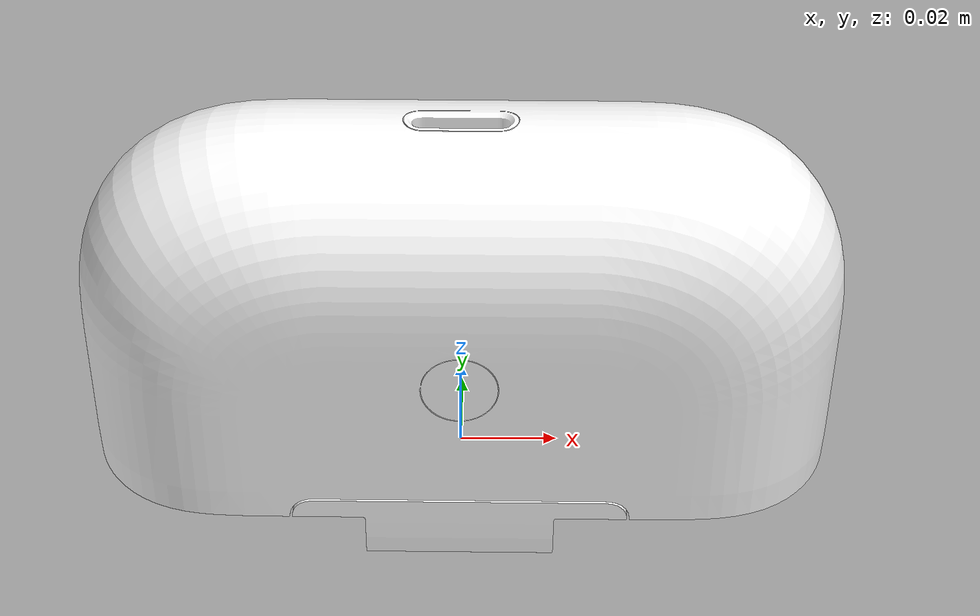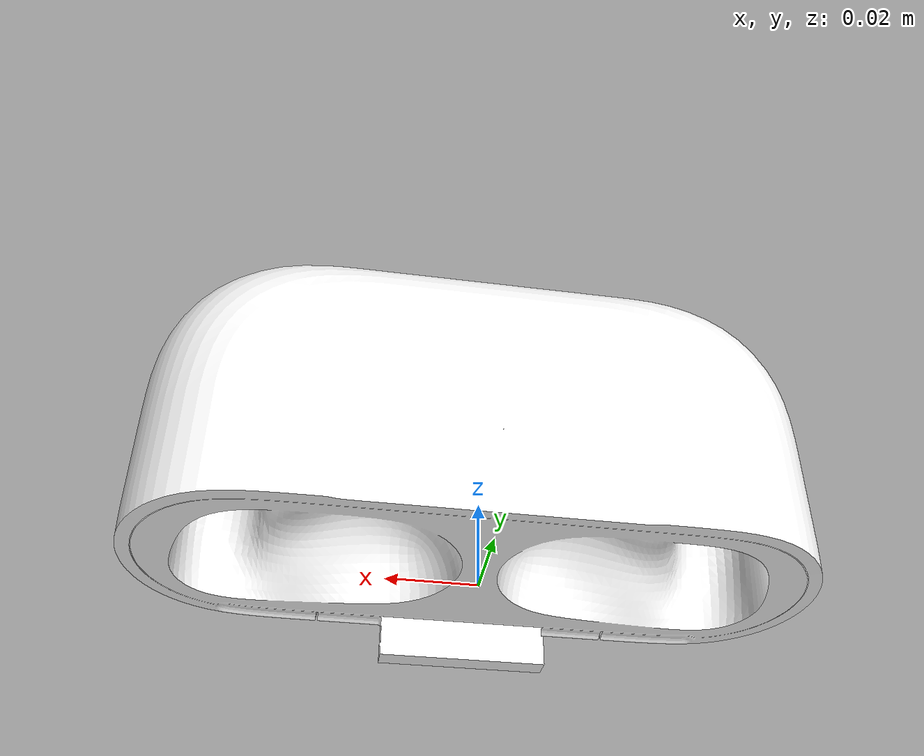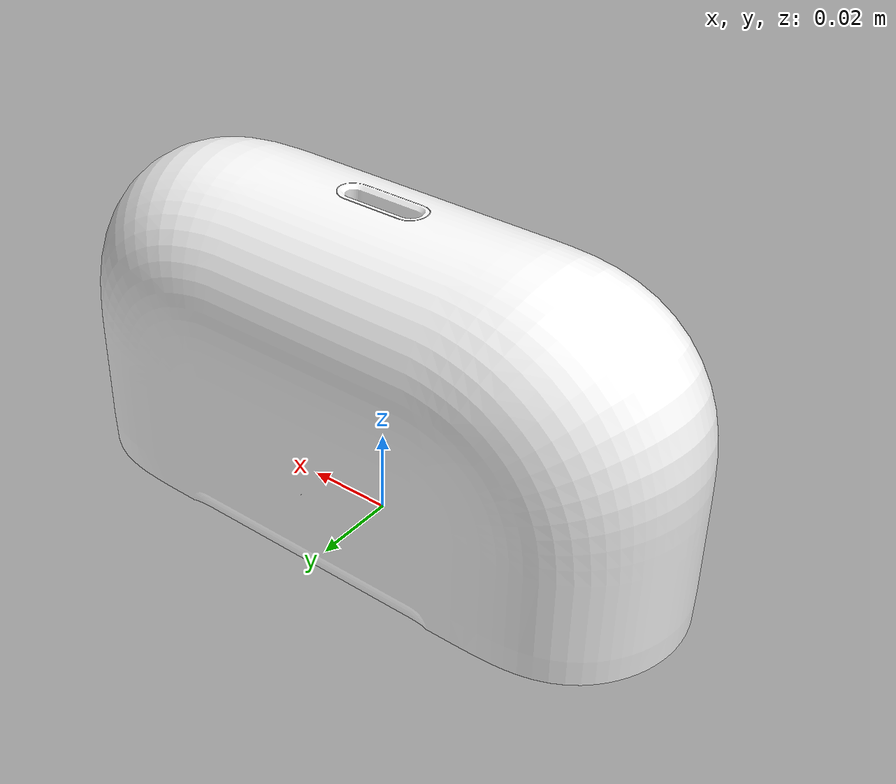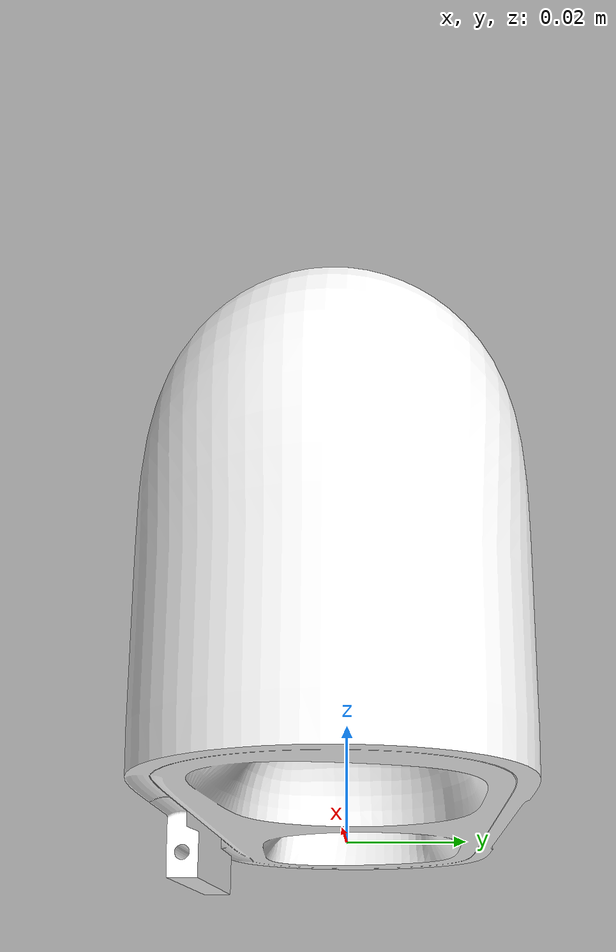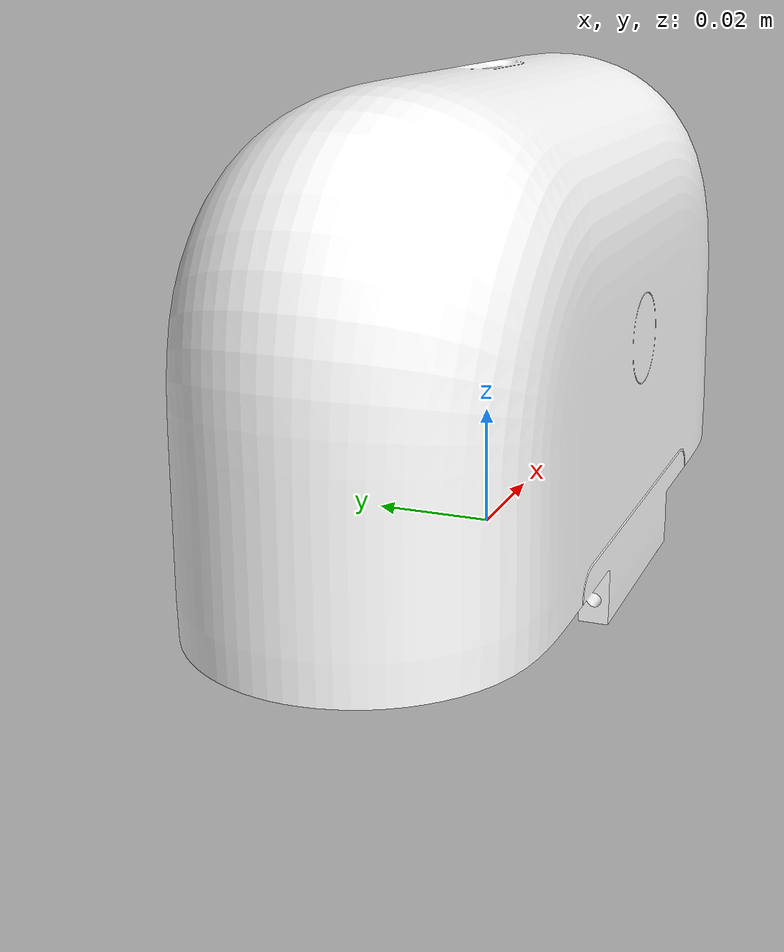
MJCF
<mujoco model="bottom_case_resized_proper_1">
  <default>
    <default class="visual">
      <geom group="2" type="mesh" contype="0" conaffinity="0"/>
    </default>
    <default class="collision">
      <geom group="3" type="mesh"/>
    </default>
  </default>
  <asset>
    <material name="material_0" specular="0.4000000000000001" shininess="0.001" rgba="1.00000000 1.00000000 1.00000000 1.0"/>
    <mesh file="bottom_case_resized_proper_1.obj"/>
    <mesh file="bottom_case_resized_proper_1_collision_0.obj"/>
    <mesh file="bottom_case_resized_proper_1_collision_1.obj"/>
    <mesh file="bottom_case_resized_proper_1_collision_2.obj"/>
    <mesh file="bottom_case_resized_proper_1_collision_3.obj"/>
    <mesh file="bottom_case_resized_proper_1_collision_4.obj"/>
    <mesh file="bottom_case_resized_proper_1_collision_5.obj"/>
    <mesh file="bottom_case_resized_proper_1_collision_6.obj"/>
    <mesh file="bottom_case_resized_proper_1_collision_7.obj"/>
    <mesh file="bottom_case_resized_proper_1_collision_8.obj"/>
    <mesh file="bottom_case_resized_proper_1_collision_9.obj"/>
    <mesh file="bottom_case_resized_proper_1_collision_10.obj"/>
    <mesh file="bottom_case_resized_proper_1_collision_11.obj"/>
    <mesh file="bottom_case_resized_proper_1_collision_12.obj"/>
    <mesh file="bottom_case_resized_proper_1_collision_13.obj"/>
    <mesh file="bottom_case_resized_proper_1_collision_14.obj"/>
    <mesh file="bottom_case_resized_proper_1_collision_15.obj"/>
    <mesh file="bottom_case_resized_proper_1_collision_16.obj"/>
    <mesh file="bottom_case_resized_proper_1_collision_17.obj"/>
    <mesh file="bottom_case_resized_proper_1_collision_18.obj"/>
    <mesh file="bottom_case_resized_proper_1_collision_19.obj"/>
    <mesh file="bottom_case_resized_proper_1_collision_20.obj"/>
    <mesh file="bottom_case_resized_proper_1_collision_21.obj"/>
    <mesh file="bottom_case_resized_proper_1_collision_22.obj"/>
    <mesh file="bottom_case_resized_proper_1_collision_23.obj"/>
    <mesh file="bottom_case_resized_proper_1_collision_24.obj"/>
    <mesh file="bottom_case_resized_proper_1_collision_25.obj"/>
    <mesh file="bottom_case_resized_proper_1_collision_26.obj"/>
    <mesh file="bottom_case_resized_proper_1_collision_27.obj"/>
    <mesh file="bottom_case_resized_proper_1_collision_28.obj"/>
    <mesh file="bottom_case_resized_proper_1_collision_29.obj"/>
    <mesh file="bottom_case_resized_proper_1_collision_30.obj"/>
    <mesh file="bottom_case_resized_proper_1_collision_31.obj"/>
    <mesh file="bottom_case_resized_proper_1_collision_32.obj"/>
    <mesh file="bottom_case_resized_proper_1_collision_33.obj"/>
    <mesh file="bottom_case_resized_proper_1_collision_34.obj"/>
    <mesh file="bottom_case_resized_proper_1_collision_35.obj"/>
    <mesh file="bottom_case_resized_proper_1_collision_36.obj"/>
    <mesh file="bottom_case_resized_proper_1_collision_37.obj"/>
    <mesh file="bottom_case_resized_proper_1_collision_38.obj"/>
    <mesh file="bottom_case_resized_proper_1_collision_39.obj"/>
    <mesh file="bottom_case_resized_proper_1_collision_40.obj"/>
    <mesh file="bottom_case_resized_proper_1_collision_41.obj"/>
    <mesh file="bottom_case_resized_proper_1_collision_42.obj"/>
    <mesh file="bottom_case_resized_proper_1_collision_43.obj"/>
    <mesh file="bottom_case_resized_proper_1_collision_44.obj"/>
    <mesh file="bottom_case_resized_proper_1_collision_45.obj"/>
  </asset>
  <worldbody>
    <body name="bottom_case_resized_proper_1">
      <geom material="material_0" mesh="bottom_case_resized_proper_1" class="visual"/>
      <geom mesh="bottom_case_resized_proper_1_collision_0" rgba="0.2785742524361745 0.4521811568731291 0.034637497642885706 1" class="collision"/>
      <geom mesh="bottom_case_resized_proper_1_collision_1" rgba="0.39219067580243094 0.4882786598197322 0.7713645759992812 1" class="collision"/>
      <geom mesh="bottom_case_resized_proper_1_collision_2" rgba="0.5806726609660999 0.12467068295680495 0.1303841166073325 1" class="collision"/>
      <geom mesh="bottom_case_resized_proper_1_collision_3" rgba="0.3298261933137705 0.7767136226077102 0.5235492765502833 1" class="collision"/>
      <geom mesh="bottom_case_resized_proper_1_collision_4" rgba="0.33726044356108575 0.11043030471619275 0.48913344480899446 1" class="collision"/>
      <geom mesh="bottom_case_resized_proper_1_collision_5" rgba="0.2569979979536394 0.5830792322413944 0.4148395491653021 1" class="collision"/>
      <geom mesh="bottom_case_resized_proper_1_collision_6" rgba="0.8416885904616718 0.29304446513107707 0.5455876545563133 1" class="collision"/>
      <geom mesh="bottom_case_resized_proper_1_collision_7" rgba="0.4356848876436553 0.9040845848676617 0.3701698288631785 1" class="collision"/>
      <geom mesh="bottom_case_resized_proper_1_collision_8" rgba="0.5550230600706484 0.43865260273743434 0.6123402778296112 1" class="collision"/>
      <geom mesh="bottom_case_resized_proper_1_collision_9" rgba="0.42748770399228697 0.8167733591986555 0.40889427186676985 1" class="collision"/>
      <geom mesh="bottom_case_resized_proper_1_collision_10" rgba="0.17685442377432792 0.36658448828655565 0.912259453574502 1" class="collision"/>
      <geom mesh="bottom_case_resized_proper_1_collision_11" rgba="0.2799095927491859 0.3761654832244987 0.9534423262108387 1" class="collision"/>
      <geom mesh="bottom_case_resized_proper_1_collision_12" rgba="0.3540203273409035 0.8247025831717465 0.40814024994487297 1" class="collision"/>
      <geom mesh="bottom_case_resized_proper_1_collision_13" rgba="0.40794811723362 0.8928191842595968 0.17208809617641063 1" class="collision"/>
      <geom mesh="bottom_case_resized_proper_1_collision_14" rgba="0.3442084905987348 0.3234281727529813 0.4146705523015549 1" class="collision"/>
      <geom mesh="bottom_case_resized_proper_1_collision_15" rgba="0.3945732083323078 0.6141168978354339 0.9030722649934739 1" class="collision"/>
      <geom mesh="bottom_case_resized_proper_1_collision_16" rgba="0.6656442942284853 0.6355694805501362 0.2655977174350499 1" class="collision"/>
      <geom mesh="bottom_case_resized_proper_1_collision_17" rgba="0.3903199875609613 0.8947099677840887 0.8497240335165984 1" class="collision"/>
      <geom mesh="bottom_case_resized_proper_1_collision_18" rgba="0.43103980501356554 0.14147856499352252 0.9142524069293189 1" class="collision"/>
      <geom mesh="bottom_case_resized_proper_1_collision_19" rgba="0.4580960675695853 0.9175751387580899 0.027916514114781465 1" class="collision"/>
      <geom mesh="bottom_case_resized_proper_1_collision_20" rgba="0.8942811467979311 0.6511221072416649 0.7862607352530782 1" class="collision"/>
      <geom mesh="bottom_case_resized_proper_1_collision_21" rgba="0.5773700020965864 0.0780039679692085 0.3351161511222056 1" class="collision"/>
      <geom mesh="bottom_case_resized_proper_1_collision_22" rgba="0.5796512564674818 0.8234430813376643 0.3145637007570318 1" class="collision"/>
      <geom mesh="bottom_case_resized_proper_1_collision_23" rgba="0.05139206104780858 0.18108112219228023 0.8796720206212871 1" class="collision"/>
      <geom mesh="bottom_case_resized_proper_1_collision_24" rgba="0.4824818349832246 0.2287195443960166 0.3561679543607875 1" class="collision"/>
      <geom mesh="bottom_case_resized_proper_1_collision_25" rgba="0.5277226951764112 0.5489724025260139 0.46679982738742787 1" class="collision"/>
      <geom mesh="bottom_case_resized_proper_1_collision_26" rgba="0.9010616803541345 0.8785743950795093 0.5185985490754643 1" class="collision"/>
      <geom mesh="bottom_case_resized_proper_1_collision_27" rgba="0.8049536947966477 0.26056665206500607 0.058602853523571974 1" class="collision"/>
      <geom mesh="bottom_case_resized_proper_1_collision_28" rgba="0.18234986777132212 0.4152042407976342 0.5324472944231049 1" class="collision"/>
      <geom mesh="bottom_case_resized_proper_1_collision_29" rgba="0.6587876179315255 0.5819444906289504 0.7493206397489974 1" class="collision"/>
      <geom mesh="bottom_case_resized_proper_1_collision_30" rgba="0.3386931558231522 0.15421120355531726 0.19051853380922346 1" class="collision"/>
      <geom mesh="bottom_case_resized_proper_1_collision_31" rgba="0.451700430342599 0.7638292599807477 0.18479495891501452 1" class="collision"/>
      <geom mesh="bottom_case_resized_proper_1_collision_32" rgba="0.03214583218780942 0.6076673386520831 0.6790354955068008 1" class="collision"/>
      <geom mesh="bottom_case_resized_proper_1_collision_33" rgba="0.2924834529171485 0.18901570197683737 0.5327175815101799 1" class="collision"/>
      <geom mesh="bottom_case_resized_proper_1_collision_34" rgba="0.7722844581187618 0.7509850485528016 0.7880939726510545 1" class="collision"/>
      <geom mesh="bottom_case_resized_proper_1_collision_35" rgba="0.36986425001565737 0.9666532863959838 0.912220539143618 1" class="collision"/>
      <geom mesh="bottom_case_resized_proper_1_collision_36" rgba="0.42539911983276824 0.4590297574922566 0.6500399394733405 1" class="collision"/>
      <geom mesh="bottom_case_resized_proper_1_collision_37" rgba="0.22623922307023248 0.6432274410737547 0.07928761990940203 1" class="collision"/>
      <geom mesh="bottom_case_resized_proper_1_collision_38" rgba="0.42718967341833414 0.11334513882556319 0.5024157108229323 1" class="collision"/>
      <geom mesh="bottom_case_resized_proper_1_collision_39" rgba="0.9728552389432507 0.6725255061527169 0.18670551039726424 1" class="collision"/>
      <geom mesh="bottom_case_resized_proper_1_collision_40" rgba="0.4933327990017322 0.5497509331064641 0.8919845925169463 1" class="collision"/>
      <geom mesh="bottom_case_resized_proper_1_collision_41" rgba="0.6454682011329784 0.8613864440656798 0.09037156067983565 1" class="collision"/>
      <geom mesh="bottom_case_resized_proper_1_collision_42" rgba="0.40083074200010416 0.8258181488260872 0.43329709723225285 1" class="collision"/>
      <geom mesh="bottom_case_resized_proper_1_collision_43" rgba="0.8742288756183914 0.583023764935039 0.6649927643603664 1" class="collision"/>
      <geom mesh="bottom_case_resized_proper_1_collision_44" rgba="0.5253728056059104 0.46202049959309277 0.7738161506860283 1" class="collision"/>
      <geom mesh="bottom_case_resized_proper_1_collision_45" rgba="0.36246998093791916 0.18338067218167065 0.2601301431945454 1" class="collision"/>
    </body>
  </worldbody>
</mujoco>
